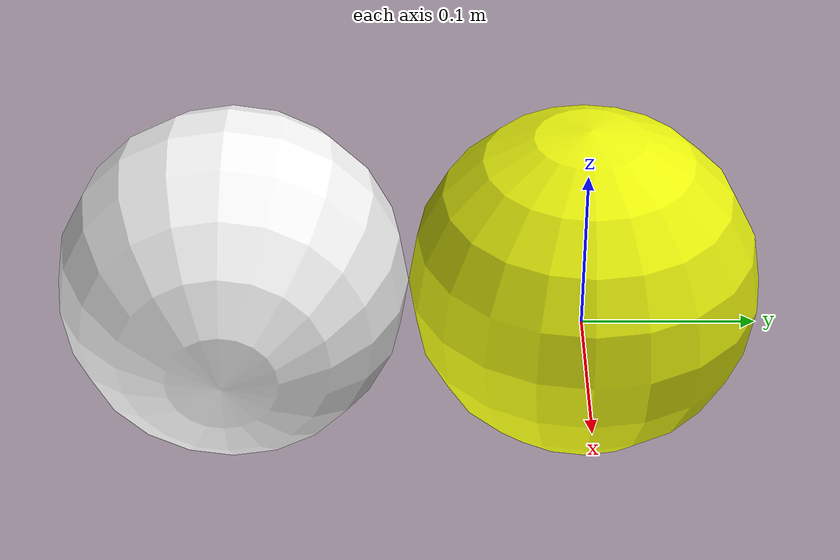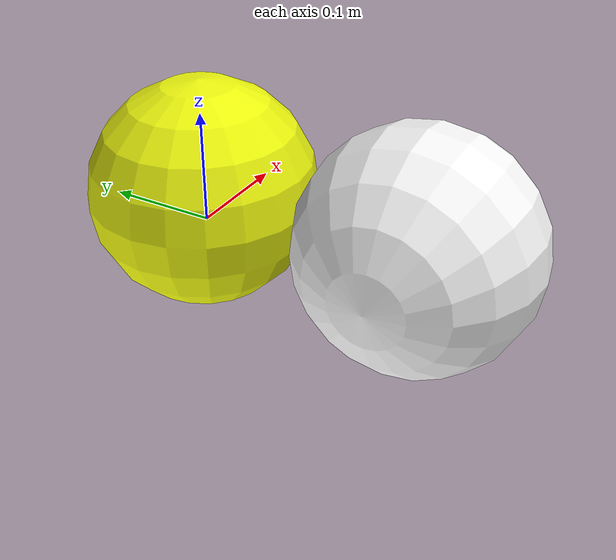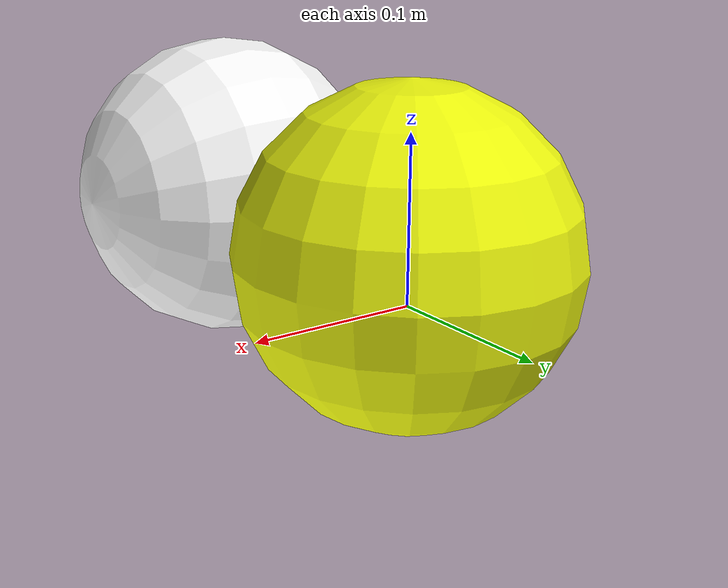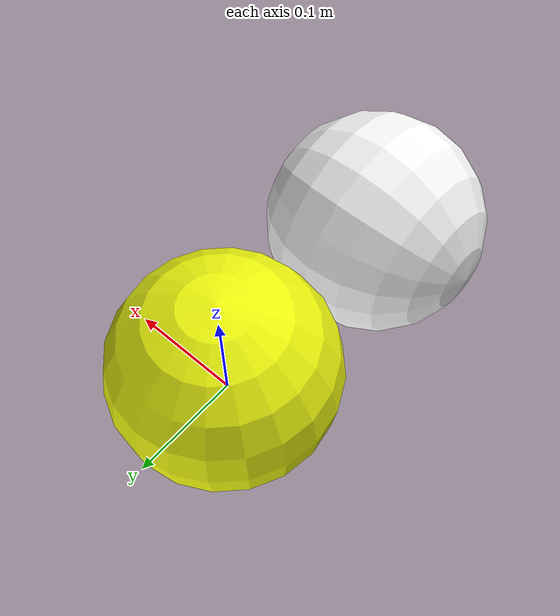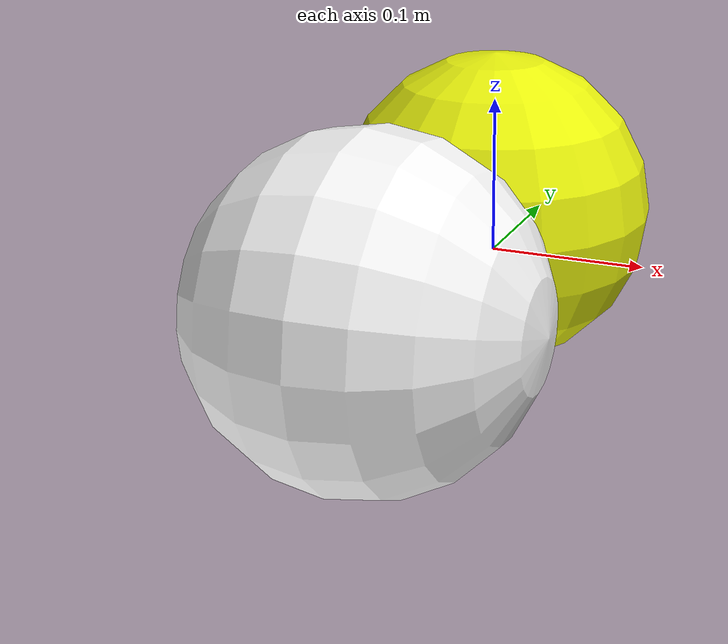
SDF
<?xml version='1.0' encoding='utf8'?>
<sdf version="1.6"><model name="centipede"><pose>0.000000e+00 0.000000e+00 3.000000e-02 0.000000e+00 -0.000000e+00 0.000000e+00</pose><link name="Core"><pose>0.000000e+00 -1.000000e-01 0.000000e+00 0.000000e+00 -0.000000e+00 0.000000e+00</pose><self_collide>True</self_collide><sensor name="core-imu_sensor" type="imu"><pose>0.000000e+00 1.000000e-01 0.000000e+00 0.000000e+00 -0.000000e+00 0.000000e+00</pose><always_on>True</always_on></sensor><visual name="body_link_1_visual">
        <pose>0.000000e+00 1.000000e-01 0.000000e+00 0.000000e+00 -0.000000e+00 0.000000e+00</pose><geometry>
          <sphere>
            <radius>0.1</radius>
          </sphere>
        </geometry>
      <material><ambient>0.94 0.98 0.05 1.0</ambient><diffuse>0.94 0.98 0.05 1.0</diffuse><specular>0.1 0.1 0.1 1.0</specular></material></visual>
      <collision name="body_link_collision">
        <pose>0.000000e+00 1.000000e-01 0.000000e+00 0.000000e+00 -0.000000e+00 0.000000e+00</pose><geometry>
          <sphere>
            <radius>0.1</radius>
          </sphere>
        </geometry>
        <surface>
          <contact>
            <ode />
          </contact>
          <friction>
            <ode />
          </friction>
        </surface>
      </collision>
      <visual name="Visual_Core2">
        <pose>0.000000e+00 -1.000000e-01 0.000000e+00 -3.141593e+00 1.570796e+00 0.000000e+00</pose><geometry>
          <sphere>
            <radius>0.1</radius>
          </sphere>
        </geometry>
      <material><ambient>0.98 0.98 0.98 1.0</ambient><diffuse>0.98 0.98 0.98 1.0</diffuse><specular>0.1 0.1 0.1 1.0</specular></material></visual>
      <collision name="Collisions_Core2">
        <pose>0.000000e+00 -1.000000e-01 0.000000e+00 -3.141593e+00 1.570796e+00 0.000000e+00</pose><geometry>
          <sphere>
            <radius>0.1</radius>
          </sphere>
        </geometry>
        <surface>
          <contact>
            <ode />
          </contact>
          <friction>
            <ode />
          </friction>
        </surface>
      </collision>
      </link></model></sdf>
